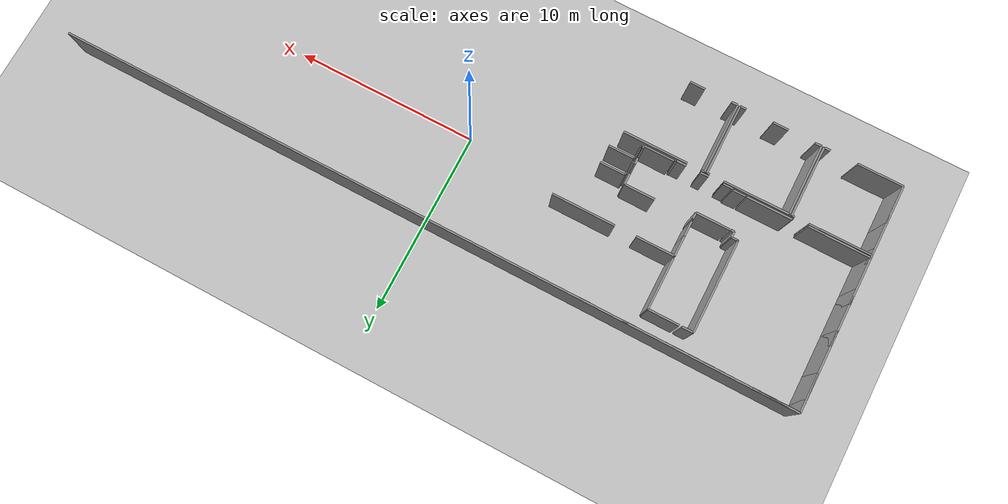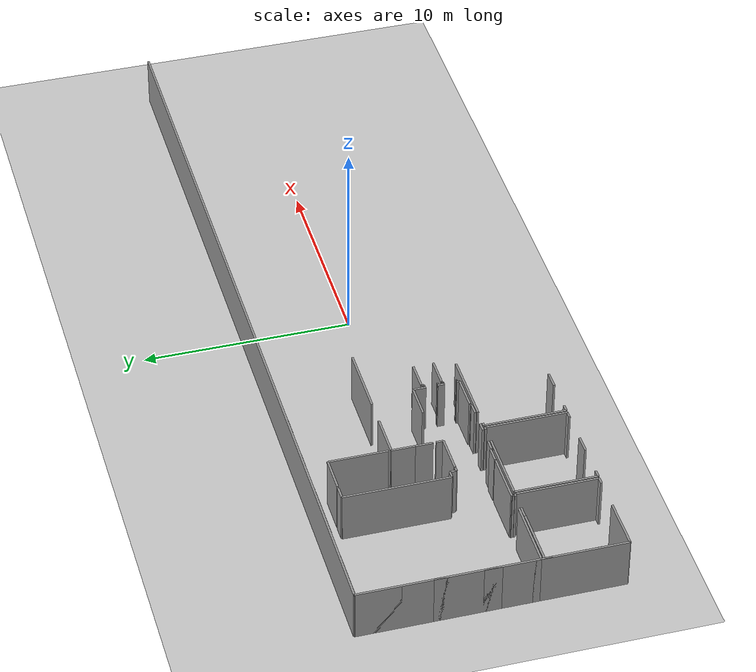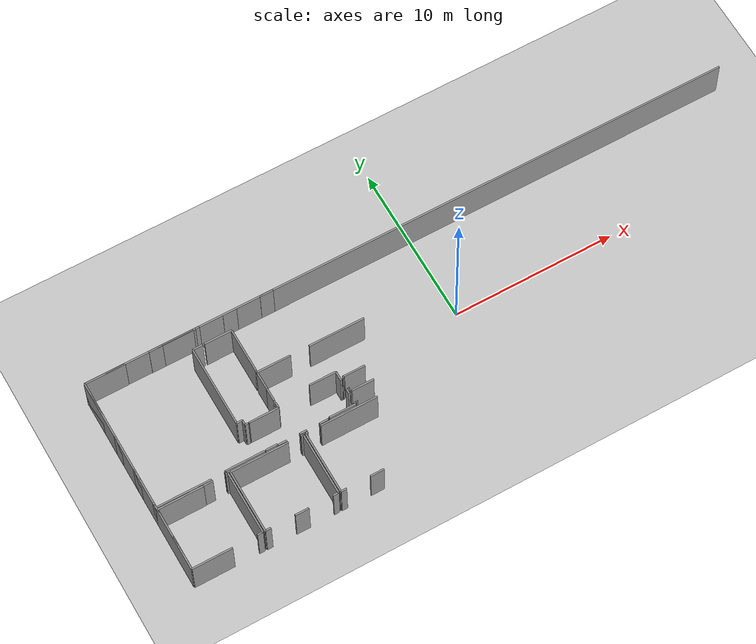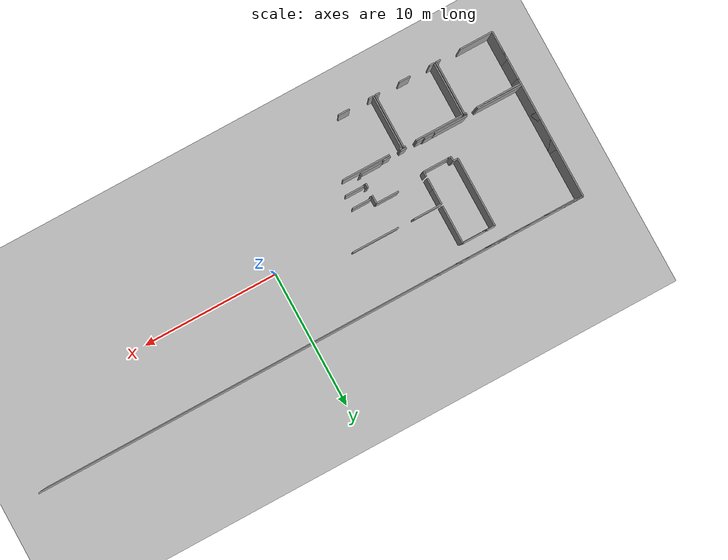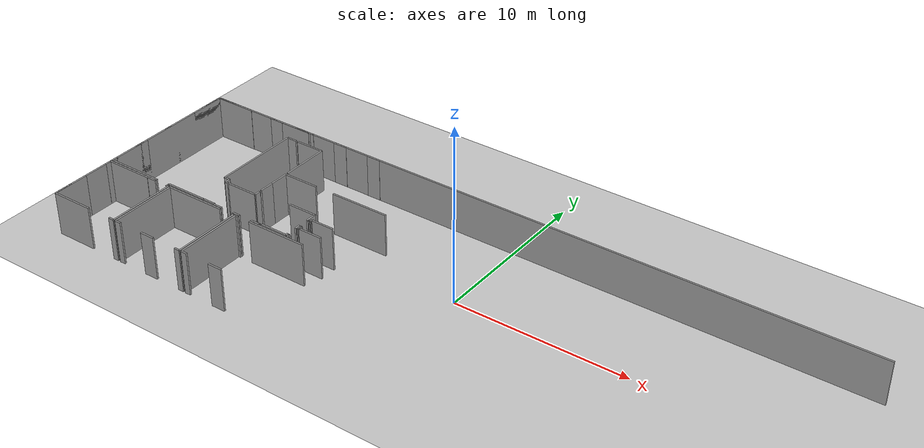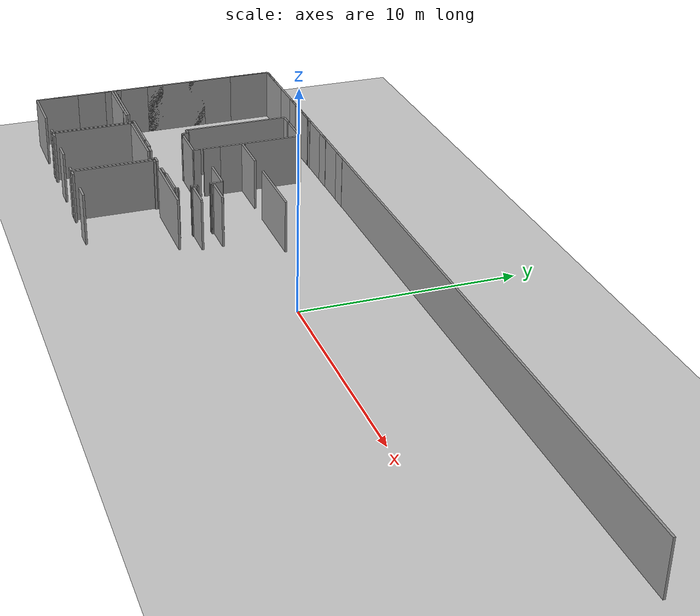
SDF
<sdf version="1.6">
 <world name="default">
  <model name="ground_plane">
   <static>1</static>
   <link name="link">
    <collision name="collision">
     <geometry><plane><normal>0 0 1</normal><size>100 100</size></plane></geometry>
     <surface><friction><ode><mu>100</mu><mu2>50</mu2></ode></friction></surface>
    </collision>
    <visual name="visual">
     <cast_shadows>0</cast_shadows>
     <geometry><plane><normal>0 0 1</normal><size>100 100</size></plane></geometry>
     <material>
      <script><uri>file://media/materials/scripts/gazebo.material</uri><name>Gazebo/Grey</name></script>
     </material>
    </visual>
   </link>
  </model>
  <model name="0510025537_Layout1_PLAN2">
   <static>1</static>
   <link name="Wall_0">
    <collision name="Wall_0_Collision">
     <geometry><box><size>2.0953167694 0.1 2.5</size></box></geometry>
     <pose>1.0476583847 0 1.25 0 0 0</pose>
    </collision>
    <visual name="Wall_0_Visual">
     <pose>1.0476583847 0 1.25 0 0 0</pose>
     <geometry><box><size>2.0953167694 0.1 2.5</size></box></geometry>
     <material>
      <script><uri>file://media/materials/scripts/gazebo.material</uri><name>Gazebo/Grey</name></script>
      <ambient>1 1 1 1</ambient>
     </material>
    </visual>
    <pose>0.00184279087501 -12.3735464193 0 0 0 1.57079632679</pose>
   </link>
   <link name="Wall_1">
    <collision name="Wall_1_Collision">
     <geometry><box><size>0.37783567389 0.1 2.5</size></box></geometry>
     <pose>0.188917836945 0 1.25 0 0 0</pose>
    </collision>
    <visual name="Wall_1_Visual">
     <pose>0.188917836945 0 1.25 0 0 0</pose>
     <geometry><box><size>0.37783567389 0.1 2.5</size></box></geometry>
     <material>
      <script><uri>file://media/materials/scripts/gazebo.material</uri><name>Gazebo/Grey</name></script>
      <ambient>1 1 1 1</ambient>
     </material>
    </visual>
    <pose>0.00184279087501 -8.86036093283 0 0 0 1.57079632679</pose>
   </link>
   <link name="Wall_2">
    <collision name="Wall_2_Collision">
     <geometry><box><size>2.75509944716 0.1 2.5</size></box></geometry>
     <pose>1.37754972358 0 1.25 0 0 0</pose>
    </collision>
    <visual name="Wall_2_Visual">
     <pose>1.37754972358 0 1.25 0 0 0</pose>
     <geometry><box><size>2.75509944716 0.1 2.5</size></box></geometry>
     <material>
      <script><uri>file://media/materials/scripts/gazebo.material</uri><name>Gazebo/Grey</name></script>
      <ambient>1 1 1 1</ambient>
     </material>
    </visual>
    <pose>0.00184279087501 -8.48252525894 0 0 0 0.0</pose>
   </link>
   <link name="Wall_3">
    <collision name="Wall_3_Collision">
     <geometry><box><size>0.0133443477156 0.1 2.5</size></box></geometry>
     <pose>0.00667217385779 0 1.25 0 0 0</pose>
    </collision>
    <visual name="Wall_3_Visual">
     <pose>0.00667217385779 0 1.25 0 0 0</pose>
     <geometry><box><size>0.0133443477156 0.1 2.5</size></box></geometry>
     <material>
      <script><uri>file://media/materials/scripts/gazebo.material</uri><name>Gazebo/Grey</name></script>
      <ambient>1 1 1 1</ambient>
     </material>
    </visual>
    <pose>2.75694223804 -8.48252525894 0 0 0 1.57079632679</pose>
   </link>
   <link name="Wall_4">
    <collision name="Wall_4_Collision">
     <geometry><box><size>0.562368939442 0.1 2.5</size></box></geometry>
     <pose>0.281184469721 0 1.25 0 0 0</pose>
    </collision>
    <visual name="Wall_4_Visual">
     <pose>0.281184469721 0 1.25 0 0 0</pose>
     <geometry><box><size>0.562368939442 0.1 2.5</size></box></geometry>
     <material>
      <script><uri>file://media/materials/scripts/gazebo.material</uri><name>Gazebo/Grey</name></script>
      <ambient>1 1 1 1</ambient>
     </material>
    </visual>
    <pose>2.75694223804 -8.46918091123 0 0 0 0.0</pose>
   </link>
   <link name="Wall_5">
    <collision name="Wall_5_Collision">
     <geometry><box><size>0.150791129186 0.1 2.5</size></box></geometry>
     <pose>0.075395564593 0 1.25 0 0 0</pose>
    </collision>
    <visual name="Wall_5_Visual">
     <pose>0.075395564593 0 1.25 0 0 0</pose>
     <geometry><box><size>0.150791129186 0.1 2.5</size></box></geometry>
     <material>
      <script><uri>file://media/materials/scripts/gazebo.material</uri><name>Gazebo/Grey</name></script>
      <ambient>1 1 1 1</ambient>
     </material>
    </visual>
    <pose>4.08082862045 -8.46918091123 0 0 0 0.0</pose>
   </link>
   <link name="Wall_6">
    <collision name="Wall_6_Collision">
     <geometry><box><size>3.9007434708 0.1 2.5</size></box></geometry>
     <pose>1.9503717354 0 1.25 0 0 0</pose>
    </collision>
    <visual name="Wall_6_Visual">
     <pose>1.9503717354 0 1.25 0 0 0</pose>
     <geometry><box><size>3.9007434708 0.1 2.5</size></box></geometry>
     <material>
      <script><uri>file://media/materials/scripts/gazebo.material</uri><name>Gazebo/Grey</name></script>
      <ambient>1 1 1 1</ambient>
     </material>
    </visual>
    <pose>4.23161974963 -8.46918091123 0 0 0 -1.57079632679</pose>
   </link>
   <link name="Wall_7">
    <collision name="Wall_7_Collision">
     <geometry><box><size>0.335324394739 0.1 2.5</size></box></geometry>
     <pose>0.167662197369 0 1.25 0 0 0</pose>
    </collision>
    <visual name="Wall_7_Visual">
     <pose>0.167662197369 0 1.25 0 0 0</pose>
     <geometry><box><size>0.335324394739 0.1 2.5</size></box></geometry>
     <material>
      <script><uri>file://media/materials/scripts/gazebo.material</uri><name>Gazebo/Grey</name></script>
      <ambient>1 1 1 1</ambient>
     </material>
    </visual>
    <pose>4.23161974963 -12.369924382 0 0 0 3.14159265359</pose>
   </link>
   <link name="Wall_8">
    <collision name="Wall_8_Collision">
     <geometry><box><size>2.42187472982 0.1 2.5</size></box></geometry>
     <pose>1.21093736491 0 1.25 0 0 0</pose>
    </collision>
    <visual name="Wall_8_Visual">
     <pose>1.21093736491 0 1.25 0 0 0</pose>
     <geometry><box><size>2.42187472982 0.1 2.5</size></box></geometry>
     <material>
      <script><uri>file://media/materials/scripts/gazebo.material</uri><name>Gazebo/Grey</name></script>
      <ambient>1 1 1 1</ambient>
     </material>
    </visual>
    <pose>2.42371481223 -12.369924382 0 0 0 -3.14009710201</pose>
   </link>
   <link name="Wall_9">
    <collision name="Wall_9_Collision">
     <geometry><box><size>0.332337802631 0.1 2.5</size></box></geometry>
     <pose>0.166168901315 0 1.25 0 0 0</pose>
    </collision>
    <visual name="Wall_9_Visual">
     <pose>0.166168901315 0 1.25 0 0 0</pose>
     <geometry><box><size>0.332337802631 0.1 2.5</size></box></geometry>
     <material>
      <script><uri>file://media/materials/scripts/gazebo.material</uri><name>Gazebo/Grey</name></script>
      <ambient>1 1 1 1</ambient>
     </material>
    </visual>
    <pose>0.0 -8.34723899091 0 0 0 1.57079632679</pose>
   </link>
   <link name="Wall_10">
    <collision name="Wall_10_Collision">
     <geometry><box><size>0.832496663913 0.1 2.5</size></box></geometry>
     <pose>0.416248331957 0 1.25 0 0 0</pose>
    </collision>
    <visual name="Wall_10_Visual">
     <pose>0.416248331957 0 1.25 0 0 0</pose>
     <geometry><box><size>0.832496663913 0.1 2.5</size></box></geometry>
     <material>
      <script><uri>file://media/materials/scripts/gazebo.material</uri><name>Gazebo/Grey</name></script>
      <ambient>1 1 1 1</ambient>
     </material>
    </visual>
    <pose>0.0 -6.60815276101 0 0 0 1.57079632679</pose>
   </link>
   <link name="Wall_11">
    <collision name="Wall_11_Collision">
     <geometry><box><size>0.82658702421 0.1 2.5</size></box></geometry>
     <pose>0.413293512105 0 1.25 0 0 0</pose>
    </collision>
    <visual name="Wall_11_Visual">
     <pose>0.413293512105 0 1.25 0 0 0</pose>
     <geometry><box><size>0.82658702421 0.1 2.5</size></box></geometry>
     <material>
      <script><uri>file://media/materials/scripts/gazebo.material</uri><name>Gazebo/Grey</name></script>
      <ambient>1 1 1 1</ambient>
     </material>
    </visual>
    <pose>0.0 -4.35499142149 0 0 0 1.57079632679</pose>
   </link>
   <link name="Wall_12">
    <collision name="Wall_12_Collision">
     <geometry><box><size>2.08584863697 0.1 2.5</size></box></geometry>
     <pose>1.04292431849 0 1.25 0 0 0</pose>
    </collision>
    <visual name="Wall_12_Visual">
     <pose>1.04292431849 0 1.25 0 0 0</pose>
     <geometry><box><size>2.08584863697 0.1 2.5</size></box></geometry>
     <material>
      <script><uri>file://media/materials/scripts/gazebo.material</uri><name>Gazebo/Grey</name></script>
      <ambient>1 1 1 1</ambient>
     </material>
    </visual>
    <pose>0.0 -2.09510071805 0 0 0 1.57079632679</pose>
   </link>
   <link name="Wall_13">
    <collision name="Wall_13_Collision">
     <geometry><box><size>2.44697210396 0.1 2.5</size></box></geometry>
     <pose>1.22348605198 0 1.25 0 0 0</pose>
    </collision>
    <visual name="Wall_13_Visual">
     <pose>1.22348605198 0 1.25 0 0 0</pose>
     <geometry><box><size>2.44697210396 0.1 2.5</size></box></geometry>
     <material>
      <script><uri>file://media/materials/scripts/gazebo.material</uri><name>Gazebo/Grey</name></script>
      <ambient>1 1 1 1</ambient>
     </material>
    </visual>
    <pose>0.0 -0.0092520810828 0 0 0 0.0</pose>
   </link>
   <link name="Wall_14">
    <collision name="Wall_14_Collision">
     <geometry><box><size>0.828938171189 0.1 2.5</size></box></geometry>
     <pose>0.414469085594 0 1.25 0 0 0</pose>
    </collision>
    <visual name="Wall_14_Visual">
     <pose>0.414469085594 0 1.25 0 0 0</pose>
     <geometry><box><size>0.828938171189 0.1 2.5</size></box></geometry>
     <material>
      <script><uri>file://media/materials/scripts/gazebo.material</uri><name>Gazebo/Grey</name></script>
      <ambient>1 1 1 1</ambient>
     </material>
    </visual>
    <pose>3.88987735909 -0.0092520810828 0 0 0 0.0</pose>
   </link>
   <link name="Wall_15">
    <collision name="Wall_15_Collision">
     <geometry><box><size>1.89909131347 0.1 2.5</size></box></geometry>
     <pose>0.949545656733 0 1.25 0 0 0</pose>
    </collision>
    <visual name="Wall_15_Visual">
     <pose>0.949545656733 0 1.25 0 0 0</pose>
     <geometry><box><size>1.89909131347 0.1 2.5</size></box></geometry>
     <material>
      <script><uri>file://media/materials/scripts/gazebo.material</uri><name>Gazebo/Grey</name></script>
      <ambient>1 1 1 1</ambient>
     </material>
    </visual>
    <pose>4.71881553028 -0.0092520810828 0 0 0 0.0</pose>
   </link>
   <link name="Wall_16">
    <collision name="Wall_16_Collision">
     <geometry><box><size>0.601957170998 0.1 2.5</size></box></geometry>
     <pose>0.300978585499 0 1.25 0 0 0</pose>
    </collision>
    <visual name="Wall_16_Visual">
     <pose>0.300978585499 0 1.25 0 0 0</pose>
     <geometry><box><size>0.601957170998 0.1 2.5</size></box></geometry>
     <material>
      <script><uri>file://media/materials/scripts/gazebo.material</uri><name>Gazebo/Grey</name></script>
      <ambient>1 1 1 1</ambient>
     </material>
    </visual>
    <pose>6.61790684374 -1.06967655843 0 0 0 3.14159265359</pose>
   </link>
   <link name="Wall_17">
    <collision name="Wall_17_Collision">
     <geometry><box><size>5.04740420665 0.1 2.5</size></box></geometry>
     <pose>2.52370210332 0 1.25 0 0 0</pose>
    </collision>
    <visual name="Wall_17_Visual">
     <pose>2.52370210332 0 1.25 0 0 0</pose>
     <geometry><box><size>5.04740420665 0.1 2.5</size></box></geometry>
     <material>
      <script><uri>file://media/materials/scripts/gazebo.material</uri><name>Gazebo/Grey</name></script>
      <ambient>1 1 1 1</ambient>
     </material>
    </visual>
    <pose>6.01594967275 -1.06967655843 0 0 0 -1.57079632679</pose>
   </link>
   <link name="Wall_18">
    <collision name="Wall_18_Collision">
     <geometry><box><size>0.345872783885 0.1 2.5</size></box></geometry>
     <pose>0.172936391943 0 1.25 0 0 0</pose>
    </collision>
    <visual name="Wall_18_Visual">
     <pose>0.172936391943 0 1.25 0 0 0</pose>
     <geometry><box><size>0.345872783885 0.1 2.5</size></box></geometry>
     <material>
      <script><uri>file://media/materials/scripts/gazebo.material</uri><name>Gazebo/Grey</name></script>
      <ambient>1 1 1 1</ambient>
     </material>
    </visual>
    <pose>6.01594967275 -6.11708076508 0 0 0 0.0</pose>
   </link>
   <link name="Wall_19">
    <collision name="Wall_19_Collision">
     <geometry><box><size>0.308826332846 0.1 2.5</size></box></geometry>
     <pose>0.154413166423 0 1.25 0 0 0</pose>
    </collision>
    <visual name="Wall_19_Visual">
     <pose>0.154413166423 0 1.25 0 0 0</pose>
     <geometry><box><size>0.308826332846 0.1 2.5</size></box></geometry>
     <material>
      <script><uri>file://media/materials/scripts/gazebo.material</uri><name>Gazebo/Grey</name></script>
      <ambient>1 1 1 1</ambient>
     </material>
    </visual>
    <pose>6.36182245663 -6.11708076508 0 0 0 -1.57079632679</pose>
   </link>
   <link name="Wall_20">
    <collision name="Wall_20_Collision">
     <geometry><box><size>0.178051725234 0.1 2.5</size></box></geometry>
     <pose>0.0890258626168 0 1.25 0 0 0</pose>
    </collision>
    <visual name="Wall_20_Visual">
     <pose>0.0890258626168 0 1.25 0 0 0</pose>
     <geometry><box><size>0.178051725234 0.1 2.5</size></box></geometry>
     <material>
      <script><uri>file://media/materials/scripts/gazebo.material</uri><name>Gazebo/Grey</name></script>
      <ambient>1 1 1 1</ambient>
     </material>
    </visual>
    <pose>6.36182245663 -6.42590709792 0 0 0 0.0</pose>
   </link>
   <link name="Wall_21">
    <collision name="Wall_21_Collision">
     <geometry><box><size>2.39778865095 0.1 2.5</size></box></geometry>
     <pose>1.19889432547 0 1.25 0 0 0</pose>
    </collision>
    <visual name="Wall_21_Visual">
     <pose>1.19889432547 0 1.25 0 0 0</pose>
     <geometry><box><size>2.39778865095 0.1 2.5</size></box></geometry>
     <material>
      <script><uri>file://media/materials/scripts/gazebo.material</uri><name>Gazebo/Grey</name></script>
      <ambient>1 1 1 1</ambient>
     </material>
    </visual>
    <pose>6.53987418186 -8.30237656478 0 0 0 3.14159265359</pose>
   </link>
   <link name="Wall_22">
    <collision name="Wall_22_Collision">
     <geometry><box><size>0.0597318421554 0.1 2.5</size></box></geometry>
     <pose>0.0298659210777 0 1.25 0 0 0</pose>
    </collision>
    <visual name="Wall_22_Visual">
     <pose>0.0298659210777 0 1.25 0 0 0</pose>
     <geometry><box><size>0.0597318421554 0.1 2.5</size></box></geometry>
     <material>
      <script><uri>file://media/materials/scripts/gazebo.material</uri><name>Gazebo/Grey</name></script>
      <ambient>1 1 1 1</ambient>
     </material>
    </visual>
    <pose>4.14208553091 -8.30237656478 0 0 0 -1.57079632679</pose>
   </link>
   <link name="Wall_23">
    <collision name="Wall_23_Collision">
     <geometry><box><size>0.0581432293321 0.1 2.5</size></box></geometry>
     <pose>0.0290716146661 0 1.25 0 0 0</pose>
    </collision>
    <visual name="Wall_23_Visual">
     <pose>0.0290716146661 0 1.25 0 0 0</pose>
     <geometry><box><size>0.0581432293321 0.1 2.5</size></box></geometry>
     <material>
      <script><uri>file://media/materials/scripts/gazebo.material</uri><name>Gazebo/Grey</name></script>
      <ambient>1 1 1 1</ambient>
     </material>
    </visual>
    <pose>4.14208553091 -8.36210840694 0 0 0 3.14159265359</pose>
   </link>
   <link name="Wall_24">
    <collision name="Wall_24_Collision">
     <geometry><box><size>3.29913753122 0.1 2.5</size></box></geometry>
     <pose>1.64956876561 0 1.25 0 0 0</pose>
    </collision>
    <visual name="Wall_24_Visual">
     <pose>1.64956876561 0 1.25 0 0 0</pose>
     <geometry><box><size>3.29913753122 0.1 2.5</size></box></geometry>
     <material>
      <script><uri>file://media/materials/scripts/gazebo.material</uri><name>Gazebo/Grey</name></script>
      <ambient>1 1 1 1</ambient>
     </material>
    </visual>
    <pose>3.29910402237 -8.36210840694 0 0 0 3.13708557675</pose>
   </link>
   <link name="Wall_25">
    <collision name="Wall_25_Collision">
     <geometry><box><size>3.89686725551 0.1 2.5</size></box></geometry>
     <pose>1.94843362776 0 1.25 0 0 0</pose>
    </collision>
    <visual name="Wall_25_Visual">
     <pose>1.94843362776 0 1.25 0 0 0</pose>
     <geometry><box><size>3.89686725551 0.1 2.5</size></box></geometry>
     <material>
      <script><uri>file://media/materials/scripts/gazebo.material</uri><name>Gazebo/Grey</name></script>
      <ambient>1 1 1 1</ambient>
     </material>
    </visual>
    <pose>4.36671538413 -12.3752621211 0 0 0 1.57079632679</pose>
   </link>
   <link name="Wall_26">
    <collision name="Wall_26_Collision">
     <geometry><box><size>3.50651331258 0.1 2.5</size></box></geometry>
     <pose>1.75325665629 0 1.25 0 0 0</pose>
    </collision>
    <visual name="Wall_26_Visual">
     <pose>1.75325665629 0 1.25 0 0 0</pose>
     <geometry><box><size>3.50651331258 0.1 2.5</size></box></geometry>
     <material>
      <script><uri>file://media/materials/scripts/gazebo.material</uri><name>Gazebo/Grey</name></script>
      <ambient>1 1 1 1</ambient>
     </material>
    </visual>
    <pose>4.36671538413 -8.4783948656 0 0 0 0.0</pose>
   </link>
   <link name="Wall_27">
    <collision name="Wall_27_Collision">
     <geometry><box><size>0.146152379742 0.1 2.5</size></box></geometry>
     <pose>0.073076189871 0 1.25 0 0 0</pose>
    </collision>
    <visual name="Wall_27_Visual">
     <pose>0.073076189871 0 1.25 0 0 0</pose>
     <geometry><box><size>0.146152379742 0.1 2.5</size></box></geometry>
     <material>
      <script><uri>file://media/materials/scripts/gazebo.material</uri><name>Gazebo/Grey</name></script>
      <ambient>1 1 1 1</ambient>
     </material>
    </visual>
    <pose>8.64459553918 -8.4783948656 0 0 0 0.0</pose>
   </link>
   <link name="Wall_28">
    <collision name="Wall_28_Collision">
     <geometry><box><size>3.89413484146 0.1 2.5</size></box></geometry>
     <pose>1.94706742073 0 1.25 0 0 0</pose>
    </collision>
    <visual name="Wall_28_Visual">
     <pose>1.94706742073 0 1.25 0 0 0</pose>
     <geometry><box><size>3.89413484146 0.1 2.5</size></box></geometry>
     <material>
      <script><uri>file://media/materials/scripts/gazebo.material</uri><name>Gazebo/Grey</name></script>
      <ambient>1 1 1 1</ambient>
     </material>
    </visual>
    <pose>8.79074791892 -8.4783948656 0 0 0 -1.57079632679</pose>
   </link>
   <link name="Wall_29">
    <collision name="Wall_29_Collision">
     <geometry><box><size>0.338755798437 0.1 2.5</size></box></geometry>
     <pose>0.169377899218 0 1.25 0 0 0</pose>
    </collision>
    <visual name="Wall_29_Visual">
     <pose>0.169377899218 0 1.25 0 0 0</pose>
     <geometry><box><size>0.338755798437 0.1 2.5</size></box></geometry>
     <material>
      <script><uri>file://media/materials/scripts/gazebo.material</uri><name>Gazebo/Grey</name></script>
      <ambient>1 1 1 1</ambient>
     </material>
    </visual>
    <pose>8.79074791892 -12.3725297071 0 0 0 3.14159265359</pose>
   </link>
   <link name="Wall_30">
    <collision name="Wall_30_Collision">
     <geometry><box><size>0.831289318167 0.1 2.5</size></box></geometry>
     <pose>0.415644659084 0 1.25 0 0 0</pose>
    </collision>
    <visual name="Wall_30_Visual">
     <pose>0.415644659084 0 1.25 0 0 0</pose>
     <geometry><box><size>0.831289318167 0.1 2.5</size></box></geometry>
     <material>
      <script><uri>file://media/materials/scripts/gazebo.material</uri><name>Gazebo/Grey</name></script>
      <ambient>1 1 1 1</ambient>
     </material>
    </visual>
    <pose>6.99059541209 -12.3725297071 0 0 0 3.14159265359</pose>
   </link>
   <link name="Wall_31">
    <collision name="Wall_31_Collision">
     <geometry><box><size>0.347853395608 0.1 2.5</size></box></geometry>
     <pose>0.173926697804 0 1.25 0 0 0</pose>
    </collision>
    <visual name="Wall_31_Visual">
     <pose>0.173926697804 0 1.25 0 0 0</pose>
     <geometry><box><size>0.347853395608 0.1 2.5</size></box></geometry>
     <material>
      <script><uri>file://media/materials/scripts/gazebo.material</uri><name>Gazebo/Grey</name></script>
      <ambient>1 1 1 1</ambient>
     </material>
    </visual>
    <pose>4.71455804791 -12.3725297071 0 0 0 -3.13373749912</pose>
   </link>
   <link name="Wall_32">
    <collision name="Wall_32_Collision">
     <geometry><box><size>3.89813814577 0.1 2.5</size></box></geometry>
     <pose>1.94906907289 0 1.25 0 0 0</pose>
    </collision>
    <visual name="Wall_32_Visual">
     <pose>1.94906907289 0 1.25 0 0 0</pose>
     <geometry><box><size>3.89813814577 0.1 2.5</size></box></geometry>
     <material>
      <script><uri>file://media/materials/scripts/gazebo.material</uri><name>Gazebo/Grey</name></script>
      <ambient>1 1 1 1</ambient>
     </material>
    </visual>
    <pose>8.92323822838 -12.3739276863 0 0 0 1.57079632679</pose>
   </link>
   <link name="Wall_33">
    <collision name="Wall_33_Collision">
     <geometry><box><size>0.159814450022 0.1 2.5</size></box></geometry>
     <pose>0.0799072250111 0 1.25 0 0 0</pose>
    </collision>
    <visual name="Wall_33_Visual">
     <pose>0.0799072250111 0 1.25 0 0 0</pose>
     <geometry><box><size>0.159814450022 0.1 2.5</size></box></geometry>
     <material>
      <script><uri>file://media/materials/scripts/gazebo.material</uri><name>Gazebo/Grey</name></script>
      <ambient>1 1 1 1</ambient>
     </material>
    </visual>
    <pose>8.92323822838 -8.47578954057 0 0 0 0.0</pose>
   </link>
   <link name="Wall_34">
    <collision name="Wall_34_Collision">
     <geometry><box><size>3.48802185931 0.1 2.5</size></box></geometry>
     <pose>1.74401092966 0 1.25 0 0 0</pose>
    </collision>
    <visual name="Wall_34_Visual">
     <pose>1.74401092966 0 1.25 0 0 0</pose>
     <geometry><box><size>3.48802185931 0.1 2.5</size></box></geometry>
     <material>
      <script><uri>file://media/materials/scripts/gazebo.material</uri><name>Gazebo/Grey</name></script>
      <ambient>1 1 1 1</ambient>
     </material>
    </visual>
    <pose>9.85175065133 -8.47578954057 0 0 0 0.0</pose>
   </link>
   <link name="Wall_37">
    <collision name="Wall_37_Collision">
     <geometry><box><size>0.827730825443 0.1 2.5</size></box></geometry>
     <pose>0.413865412722 0 1.25 0 0 0</pose>
    </collision>
    <visual name="Wall_37_Visual">
     <pose>0.413865412722 0 1.25 0 0 0</pose>
     <geometry><box><size>0.827730825443 0.1 2.5</size></box></geometry>
     <material>
      <script><uri>file://media/materials/scripts/gazebo.material</uri><name>Gazebo/Grey</name></script>
      <ambient>1 1 1 1</ambient>
     </material>
    </visual>
    <pose>11.5461015441 -12.3732922412 0 0 0 3.14159265359</pose>
   </link>
   <link name="Wall_38">
    <collision name="Wall_38_Collision">
     <geometry><box><size>0.341806525729 0.1 2.5</size></box></geometry>
     <pose>0.170903262865 0 1.25 0 0 0</pose>
    </collision>
    <visual name="Wall_38_Visual">
     <pose>0.170903262865 0 1.25 0 0 0</pose>
     <geometry><box><size>0.341806525729 0.1 2.5</size></box></geometry>
     <material>
      <script><uri>file://media/materials/scripts/gazebo.material</uri><name>Gazebo/Grey</name></script>
      <ambient>1 1 1 1</ambient>
     </material>
    </visual>
    <pose>9.26504416344 -12.3732922412 0 0 0 -3.13973357412</pose>
   </link>
   <link name="Wall_39">
    <collision name="Wall_39_Collision">
     <geometry><box><size>1.80618923556 0.1 2.5</size></box></geometry>
     <pose>0.90309461778 0 1.25 0 0 0</pose>
    </collision>
    <visual name="Wall_39_Visual">
     <pose>0.90309461778 0 1.25 0 0 0</pose>
     <geometry><box><size>1.80618923556 0.1 2.5</size></box></geometry>
     <material>
      <script><uri>file://media/materials/scripts/gazebo.material</uri><name>Gazebo/Grey</name></script>
      <ambient>1 1 1 1</ambient>
     </material>
    </visual>
    <pose>6.60214780454 -6.42317468387 0 0 0 0.0</pose>
   </link>
   <link name="Wall_40">
    <collision name="Wall_40_Collision">
     <geometry><box><size>0.347207218657 0.1 2.5</size></box></geometry>
     <pose>0.173603609328 0 1.25 0 0 0</pose>
    </collision>
    <visual name="Wall_40_Visual">
     <pose>0.173603609328 0 1.25 0 0 0</pose>
     <geometry><box><size>0.347207218657 0.1 2.5</size></box></geometry>
     <material>
      <script><uri>file://media/materials/scripts/gazebo.material</uri><name>Gazebo/Grey</name></script>
      <ambient>1 1 1 1</ambient>
     </material>
    </visual>
    <pose>8.4083370401 -6.42317468387 0 0 0 1.57079632679</pose>
   </link>
   <link name="Wall_41">
    <collision name="Wall_41_Collision">
     <geometry><box><size>0.0605579208235 0.1 2.5</size></box></geometry>
     <pose>0.0302789604118 0 1.25 0 0 0</pose>
    </collision>
    <visual name="Wall_41_Visual">
     <pose>0.0302789604118 0 1.25 0 0 0</pose>
     <geometry><box><size>0.0605579208235 0.1 2.5</size></box></geometry>
     <material>
      <script><uri>file://media/materials/scripts/gazebo.material</uri><name>Gazebo/Grey</name></script>
      <ambient>1 1 1 1</ambient>
     </material>
    </visual>
    <pose>10.3918154667 -8.28934993963 0 0 0 -1.57079632679</pose>
   </link>
   <link name="Wall_42">
    <collision name="Wall_42_Collision">
     <geometry><box><size>0.542543051408 0.1 2.5</size></box></geometry>
     <pose>0.271271525704 0 1.25 0 0 0</pose>
    </collision>
    <visual name="Wall_42_Visual">
     <pose>0.271271525704 0 1.25 0 0 0</pose>
     <geometry><box><size>0.542543051408 0.1 2.5</size></box></geometry>
     <material>
      <script><uri>file://media/materials/scripts/gazebo.material</uri><name>Gazebo/Grey</name></script>
      <ambient>1 1 1 1</ambient>
     </material>
    </visual>
    <pose>10.3918154667 -8.34990786046 0 0 0 3.14159265359</pose>
   </link>
   <link name="Wall_43">
    <collision name="Wall_43_Collision">
     <geometry><box><size>0.438711317278 0.1 2.5</size></box></geometry>
     <pose>0.219355658639 0 1.25 0 0 0</pose>
    </collision>
    <visual name="Wall_43_Visual">
     <pose>0.219355658639 0 1.25 0 0 0</pose>
     <geometry><box><size>0.438711317278 0.1 2.5</size></box></geometry>
     <material>
      <script><uri>file://media/materials/scripts/gazebo.material</uri><name>Gazebo/Grey</name></script>
      <ambient>1 1 1 1</ambient>
     </material>
    </visual>
    <pose>9.0805744424 -8.34990786046 0 0 0 3.14159265359</pose>
   </link>
   <link name="Wall_44">
    <collision name="Wall_44_Collision">
     <geometry><box><size>0.544258753257 0.1 2.5</size></box></geometry>
     <pose>0.272129376628 0 1.25 0 0 0</pose>
    </collision>
    <visual name="Wall_44_Visual">
     <pose>0.272129376628 0 1.25 0 0 0</pose>
     <geometry><box><size>0.544258753257 0.1 2.5</size></box></geometry>
     <material>
      <script><uri>file://media/materials/scripts/gazebo.material</uri><name>Gazebo/Grey</name></script>
      <ambient>1 1 1 1</ambient>
     </material>
    </visual>
    <pose>7.86649297833 -8.34990786046 0 0 0 3.14159265359</pose>
   </link>
   <link name="Wall_45">
    <collision name="Wall_45_Collision">
     <geometry><box><size>0.056427527483 0.1 2.5</size></box></geometry>
     <pose>0.0282137637415 0 1.25 0 0 0</pose>
    </collision>
    <visual name="Wall_45_Visual">
     <pose>0.0282137637415 0 1.25 0 0 0</pose>
     <geometry><box><size>0.056427527483 0.1 2.5</size></box></geometry>
     <material>
      <script><uri>file://media/materials/scripts/gazebo.material</uri><name>Gazebo/Grey</name></script>
      <ambient>1 1 1 1</ambient>
     </material>
    </visual>
    <pose>7.32223422507 -8.34990786046 0 0 0 1.57079632679</pose>
   </link>
   <link name="Wall_46">
    <collision name="Wall_46_Collision">
     <geometry><box><size>0.720094296268 0.1 2.5</size></box></geometry>
     <pose>0.360047148134 0 1.25 0 0 0</pose>
    </collision>
    <visual name="Wall_46_Visual">
     <pose>0.360047148134 0 1.25 0 0 0</pose>
     <geometry><box><size>0.720094296268 0.1 2.5</size></box></geometry>
     <material>
      <script><uri>file://media/materials/scripts/gazebo.material</uri><name>Gazebo/Grey</name></script>
      <ambient>1 1 1 1</ambient>
     </material>
    </visual>
    <pose>7.32223422507 -8.29348033297 0 0 0 -3.13691566687</pose>
   </link>
   <link name="Wall_47">
    <collision name="Wall_47_Collision">
     <geometry><box><size>1.36131410053 0.1 2.5</size></box></geometry>
     <pose>0.680657050264 0 1.25 0 0 0</pose>
    </collision>
    <visual name="Wall_47_Visual">
     <pose>0.680657050264 0 1.25 0 0 0</pose>
     <geometry><box><size>1.36131410053 0.1 2.5</size></box></geometry>
     <material>
      <script><uri>file://media/materials/scripts/gazebo.material</uri><name>Gazebo/Grey</name></script>
      <ambient>1 1 1 1</ambient>
     </material>
    </visual>
    <pose>12.3027896041 -6.52281248014 0 0 0 0.0</pose>
   </link>
   <link name="Wall_52">
    <collision name="Wall_52_Collision">
     <geometry><box><size>0.0592870305649 0.1 2.5</size></box></geometry>
     <pose>0.0296435152825 0 1.25 0 0 0</pose>
    </collision>
    <visual name="Wall_52_Visual">
     <pose>0.0296435152825 0 1.25 0 0 0</pose>
     <geometry><box><size>0.0592870305649 0.1 2.5</size></box></geometry>
     <material>
      <script><uri>file://media/materials/scripts/gazebo.material</uri><name>Gazebo/Grey</name></script>
      <ambient>1 1 1 1</ambient>
     </material>
    </visual>
    <pose>12.2447734638 -7.30275783186 0 0 0 1.57079632679</pose>
   </link>
   <link name="Wall_53">
    <collision name="Wall_53_Collision">
     <geometry><box><size>0.0461333163881 0.1 2.5</size></box></geometry>
     <pose>0.0230666581941 0 1.25 0 0 0</pose>
    </collision>
    <visual name="Wall_53_Visual">
     <pose>0.0230666581941 0 1.25 0 0 0</pose>
     <geometry><box><size>0.0461333163881 0.1 2.5</size></box></geometry>
     <material>
      <script><uri>file://media/materials/scripts/gazebo.material</uri><name>Gazebo/Grey</name></script>
      <ambient>1 1 1 1</ambient>
     </material>
    </visual>
    <pose>12.2447734638 -6.67735273559 0 0 0 1.57079632679</pose>
   </link>
   <link name="Wall_54">
    <collision name="Wall_54_Collision">
     <geometry><box><size>0.0575713287158 0.1 2.5</size></box></geometry>
     <pose>0.0287856643579 0 1.25 0 0 0</pose>
    </collision>
    <visual name="Wall_54_Visual">
     <pose>0.0287856643579 0 1.25 0 0 0</pose>
     <geometry><box><size>0.0575713287158 0.1 2.5</size></box></geometry>
     <material>
      <script><uri>file://media/materials/scripts/gazebo.material</uri><name>Gazebo/Grey</name></script>
      <ambient>1 1 1 1</ambient>
     </material>
    </visual>
    <pose>12.2447734638 -6.6312194192 0 0 0 0.0</pose>
   </link>
   <link name="Wall_55">
    <collision name="Wall_55_Collision">
     <geometry><box><size>0.108407851625 0.1 2.5</size></box></geometry>
     <pose>0.0542039258124 0 1.25 0 0 0</pose>
    </collision>
    <visual name="Wall_55_Visual">
     <pose>0.0542039258124 0 1.25 0 0 0</pose>
     <geometry><box><size>0.108407851625 0.1 2.5</size></box></geometry>
     <material>
      <script><uri>file://media/materials/scripts/gazebo.material</uri><name>Gazebo/Grey</name></script>
      <ambient>1 1 1 1</ambient>
     </material>
    </visual>
    <pose>12.3023447925 -6.6312194192 0 0 0 1.56669318452</pose>
   </link>
   <link name="Wall_56">
    <collision name="Wall_56_Collision">
     <geometry><box><size>1.37014678782 0.1 2.5</size></box></geometry>
     <pose>0.685073393912 0 1.25 0 0 0</pose>
    </collision>
    <visual name="Wall_56_Visual">
     <pose>0.685073393912 0 1.25 0 0 0</pose>
     <geometry><box><size>1.37014678782 0.1 2.5</size></box></geometry>
     <material>
      <script><uri>file://media/materials/scripts/gazebo.material</uri><name>Gazebo/Grey</name></script>
      <ambient>1 1 1 1</ambient>
     </material>
    </visual>
    <pose>12.3019635254 -7.48246171443 0 0 0 0.0</pose>
   </link>
   <link name="Wall_61">
    <collision name="Wall_61_Collision">
     <geometry><box><size>0.0533773908623 0.1 2.5</size></box></geometry>
     <pose>0.0266886954312 0 1.25 0 0 0</pose>
    </collision>
    <visual name="Wall_61_Visual">
     <pose>0.0266886954312 0 1.25 0 0 0</pose>
     <geometry><box><size>0.0533773908623 0.1 2.5</size></box></geometry>
     <material>
      <script><uri>file://media/materials/scripts/gazebo.material</uri><name>Gazebo/Grey</name></script>
      <ambient>1 1 1 1</ambient>
     </material>
    </visual>
    <pose>12.240706615 -8.19555823855 0 0 0 1.57079632679</pose>
   </link>
   <link name="Wall_62">
    <collision name="Wall_62_Collision">
     <geometry><box><size>0.0484844633666 0.1 2.5</size></box></geometry>
     <pose>0.0242422316833 0 1.25 0 0 0</pose>
    </collision>
    <visual name="Wall_62_Visual">
     <pose>0.0242422316833 0 1.25 0 0 0</pose>
     <geometry><box><size>0.0484844633666 0.1 2.5</size></box></geometry>
     <material>
      <script><uri>file://media/materials/scripts/gazebo.material</uri><name>Gazebo/Grey</name></script>
      <ambient>1 1 1 1</ambient>
     </material>
    </visual>
    <pose>12.240706615 -7.57104276546 0 0 0 1.57079632679</pose>
   </link>
   <link name="Wall_63">
    <collision name="Wall_63_Collision">
     <geometry><box><size>0.0575713287158 0.1 2.5</size></box></geometry>
     <pose>0.0287856643579 0 1.25 0 0 0</pose>
    </collision>
    <visual name="Wall_63_Visual">
     <pose>0.0287856643579 0 1.25 0 0 0</pose>
     <geometry><box><size>0.0575713287158 0.1 2.5</size></box></geometry>
     <material>
      <script><uri>file://media/materials/scripts/gazebo.material</uri><name>Gazebo/Grey</name></script>
      <ambient>1 1 1 1</ambient>
     </material>
    </visual>
    <pose>12.240706615 -7.52255830209 0 0 0 0.0</pose>
   </link>
   <link name="Wall_64">
    <collision name="Wall_64_Collision">
     <geometry><box><size>0.0402656162847 0.1 2.5</size></box></geometry>
     <pose>0.0201328081423 0 1.25 0 0 0</pose>
    </collision>
    <visual name="Wall_64_Visual">
     <pose>0.0201328081423 0 1.25 0 0 0</pose>
     <geometry><box><size>0.0402656162847 0.1 2.5</size></box></geometry>
     <material>
      <script><uri>file://media/materials/scripts/gazebo.material</uri><name>Gazebo/Grey</name></script>
      <ambient>1 1 1 1</ambient>
     </material>
    </visual>
    <pose>12.2982779437 -7.52255830209 0 0 0 1.47913629705</pose>
   </link>
   <link name="Wall_65">
    <collision name="Wall_65_Collision">
     <geometry><box><size>1.64732795323 0.1 2.5</size></box></geometry>
     <pose>0.823663976616 0 1.25 0 0 0</pose>
    </collision>
    <visual name="Wall_65_Visual">
     <pose>0.823663976616 0 1.25 0 0 0</pose>
     <geometry><box><size>1.64732795323 0.1 2.5</size></box></geometry>
     <material>
      <script><uri>file://media/materials/scripts/gazebo.material</uri><name>Gazebo/Grey</name></script>
      <ambient>1 1 1 1</ambient>
     </material>
    </visual>
    <pose>10.4731524433 -6.07666645485 0 0 0 0.0</pose>
   </link>
   <link name="Wall_66">
    <collision name="Wall_66_Collision">
     <geometry><box><size>0.606913643007 0.1 2.5</size></box></geometry>
     <pose>0.303456821503 0 1.25 0 0 0</pose>
    </collision>
    <visual name="Wall_66_Visual">
     <pose>0.303456821503 0 1.25 0 0 0</pose>
     <geometry><box><size>0.606913643007 0.1 2.5</size></box></geometry>
     <material>
      <script><uri>file://media/materials/scripts/gazebo.material</uri><name>Gazebo/Grey</name></script>
      <ambient>1 1 1 1</ambient>
     </material>
    </visual>
    <pose>12.1204803965 -6.07666645485 0 0 0 -1.57079632679</pose>
   </link>
   <link name="Wall_67">
    <collision name="Wall_67_Collision">
     <geometry><box><size>0.332337802631 0.1 2.5</size></box></geometry>
     <pose>0.166168901315 0 1.25 0 0 0</pose>
    </collision>
    <visual name="Wall_67_Visual">
     <pose>0.166168901315 0 1.25 0 0 0</pose>
     <geometry><box><size>0.332337802631 0.1 2.5</size></box></geometry>
     <material>
      <script><uri>file://media/materials/scripts/gazebo.material</uri><name>Gazebo/Grey</name></script>
      <ambient>1 1 1 1</ambient>
     </material>
    </visual>
    <pose>12.1204803965 -7.24493232509 0 0 0 -1.57079632679</pose>
   </link>
   <link name="Wall_68">
    <collision name="Wall_68_Collision">
     <geometry><box><size>0.147486814514 0.1 2.5</size></box></geometry>
     <pose>0.0737434072568 0 1.25 0 0 0</pose>
    </collision>
    <visual name="Wall_68_Visual">
     <pose>0.0737434072568 0 1.25 0 0 0</pose>
     <geometry><box><size>0.147486814514 0.1 2.5</size></box></geometry>
     <material>
      <script><uri>file://media/materials/scripts/gazebo.material</uri><name>Gazebo/Grey</name></script>
      <ambient>1 1 1 1</ambient>
     </material>
    </visual>
    <pose>12.1204803965 -8.14389654953 0 0 0 -1.57079632679</pose>
   </link>
   <link name="Wall_69">
    <collision name="Wall_69_Collision">
     <geometry><box><size>1.62642180848 0.1 2.5</size></box></geometry>
     <pose>0.813210904238 0 1.25 0 0 0</pose>
    </collision>
    <visual name="Wall_69_Visual">
     <pose>0.813210904238 0 1.25 0 0 0</pose>
     <geometry><box><size>1.62642180848 0.1 2.5</size></box></geometry>
     <material>
      <script><uri>file://media/materials/scripts/gazebo.material</uri><name>Gazebo/Grey</name></script>
      <ambient>1 1 1 1</ambient>
     </material>
    </visual>
    <pose>12.1204803965 -8.29138336405 0 0 0 3.14159265359</pose>
   </link>
   <link name="Wall_70">
    <collision name="Wall_70_Collision">
     <geometry><box><size>2.79083052678 0.1 2.5</size></box></geometry>
     <pose>1.39541526339 0 1.25 0 0 0</pose>
    </collision>
    <visual name="Wall_70_Visual">
     <pose>1.39541526339 0 1.25 0 0 0</pose>
     <geometry><box><size>2.79083052678 0.1 2.5</size></box></geometry>
     <material>
      <script><uri>file://media/materials/scripts/gazebo.material</uri><name>Gazebo/Grey</name></script>
      <ambient>1 1 1 1</ambient>
     </material>
    </visual>
    <pose>8.40973501938 -3.86036093283 0 0 0 1.57079632679</pose>
   </link>
   <link name="Wall_71">
    <collision name="Wall_71_Collision">
     <geometry><box><size>1.66969562178 0.1 2.5</size></box></geometry>
     <pose>0.834847810892 0 1.25 0 0 0</pose>
    </collision>
    <visual name="Wall_71_Visual">
     <pose>0.834847810892 0 1.25 0 0 0</pose>
     <geometry><box><size>1.66969562178 0.1 2.5</size></box></geometry>
     <material>
      <script><uri>file://media/materials/scripts/gazebo.material</uri><name>Gazebo/Grey</name></script>
      <ambient>1 1 1 1</ambient>
     </material>
    </visual>
    <pose>8.40973501938 -1.06953040605 0 0 0 3.14159265359</pose>
   </link>
   <link name="Wall_72">
    <collision name="Wall_72_Collision">
     <geometry><box><size>0.234225074665 0.1 2.5</size></box></geometry>
     <pose>0.117112537332 0 1.25 0 0 0</pose>
    </collision>
    <visual name="Wall_72_Visual">
     <pose>0.117112537332 0 1.25 0 0 0</pose>
     <geometry><box><size>0.234225074665 0.1 2.5</size></box></geometry>
     <material>
      <script><uri>file://media/materials/scripts/gazebo.material</uri><name>Gazebo/Grey</name></script>
      <ambient>1 1 1 1</ambient>
     </material>
    </visual>
    <pose>6.7400393976 -0.00805744423969 0 0 0 0.0</pose>
   </link>
   <link name="Wall_73">
    <collision name="Wall_73_Collision">
     <geometry><box><size>0.852894452564 0.1 2.5</size></box></geometry>
     <pose>0.426447226282 0 1.25 0 0 0</pose>
    </collision>
    <visual name="Wall_73_Visual">
     <pose>0.426447226282 0 1.25 0 0 0</pose>
     <geometry><box><size>0.852894452564 0.1 2.5</size></box></geometry>
     <material>
      <script><uri>file://media/materials/scripts/gazebo.material</uri><name>Gazebo/Grey</name></script>
      <ambient>1 1 1 1</ambient>
     </material>
    </visual>
    <pose>8.41291224503 -0.00805744423969 0 0 0 0.0</pose>
   </link>
   <link name="Wall_74">
    <collision name="Wall_74_Collision">
     <geometry><box><size>0.821884730254 0.1 2.5</size></box></geometry>
     <pose>0.410942365127 0 1.25 0 0 0</pose>
    </collision>
    <visual name="Wall_74_Visual">
     <pose>0.410942365127 0 1.25 0 0 0</pose>
     <geometry><box><size>0.821884730254 0.1 2.5</size></box></geometry>
     <material>
      <script><uri>file://media/materials/scripts/gazebo.material</uri><name>Gazebo/Grey</name></script>
      <ambient>1 1 1 1</ambient>
     </material>
    </visual>
    <pose>10.7187519858 -0.00805744423969 0 0 0 0.0</pose>
   </link>
   <link name="Wall_242">
    <collision name="Wall_242_Collision">
     <geometry><box><size>1.11482493487 0.1 2.5</size></box></geometry>
     <pose>0.557412467433 0 1.25 0 0 0</pose>
    </collision>
    <visual name="Wall_242_Visual">
     <pose>0.557412467433 0 1.25 0 0 0</pose>
     <geometry><box><size>1.11482493487 0.1 2.5</size></box></geometry>
     <material>
      <script><uri>file://media/materials/scripts/gazebo.material</uri><name>Gazebo/Grey</name></script>
      <ambient>1 1 1 1</ambient>
     </material>
    </visual>
    <pose>8.40573171507 -5.10754908814 0 0 0 1.57079632679</pose>
   </link>
   <link name="Wall_243">
    <collision name="Wall_243_Collision">
     <geometry><box><size>2.0535680244 0.1 2.5</size></box></geometry>
     <pose>1.0267840122 0 1.25 0 0 0</pose>
    </collision>
    <visual name="Wall_243_Visual">
     <pose>1.0267840122 0 1.25 0 0 0</pose>
     <geometry><box><size>2.0535680244 0.1 2.5</size></box></geometry>
     <material>
      <script><uri>file://media/materials/scripts/gazebo.material</uri><name>Gazebo/Grey</name></script>
      <ambient>1 1 1 1</ambient>
     </material>
    </visual>
    <pose>8.40573171507 -3.99272415327 0 0 0 0.0</pose>
   </link>
   <link name="Wall_244">
    <collision name="Wall_244_Collision">
     <geometry><box><size>3.40979856389 0.1 2.5</size></box></geometry>
     <pose>1.70489928195 0 1.25 0 0 0</pose>
    </collision>
    <visual name="Wall_244_Visual">
     <pose>1.70489928195 0 1.25 0 0 0</pose>
     <geometry><box><size>3.40979856389 0.1 2.5</size></box></geometry>
     <material>
      <script><uri>file://media/materials/scripts/gazebo.material</uri><name>Gazebo/Grey</name></script>
      <ambient>1 1 1 1</ambient>
     </material>
    </visual>
    <pose>11.6160005084 -3.99272415327 0 0 0 0.0</pose>
   </link>
   <link name="Wall_272">
    <collision name="Wall_272_Collision">
     <geometry><box><size>0.82856275463 0.1 2.5</size></box></geometry>
     <pose>0.414281377315 0 1.25 0 0 0</pose>
    </collision>
    <visual name="Wall_272_Visual">
     <pose>0.414281377315 0 1.25 0 0 0</pose>
     <geometry><box><size>0.82856275463 0.1 2.5</size></box></geometry>
     <material>
      <script><uri>file://media/materials/scripts/gazebo.material</uri><name>Gazebo/Grey</name></script>
      <ambient>1 1 1 1</ambient>
     </material>
    </visual>
    <pose>8.40261803393 -5.93610599225 0 0 0 1.56703838759</pose>
   </link>
   <link name="Wall_281">
    <collision name="Wall_281_Collision">
     <geometry><box><size>12.3753892101 0.1 2.5</size></box></geometry>
     <pose>6.18769460507 0 1.25 0 0 0</pose>
    </collision>
    <visual name="Wall_281_Visual">
     <pose>6.18769460507 0 1.25 0 0 0</pose>
     <geometry><box><size>12.3753892101 0.1 2.5</size></box></geometry>
     <material>
      <script><uri>file://media/materials/scripts/gazebo.material</uri><name>Gazebo/Grey</name></script>
      <ambient>1 1 1 1</ambient>
     </material>
    </visual>
    <pose>0.0 -12.3753892101 0 0 0 1.57079632679</pose>
   </link>
   <link name="Wall_282">
    <collision name="Wall_282_Collision">
     <geometry><box><size>40.483891466 0.1 2.5</size></box></geometry>
     <pose>20.241945733 0 1.25 0 0 0</pose>
    </collision>
    <visual name="Wall_282_Visual">
     <pose>20.241945733 0 1.25 0 0 0</pose>
     <geometry><box><size>40.483891466 0.1 2.5</size></box></geometry>
     <material>
      <script><uri>file://media/materials/scripts/gazebo.material</uri><name>Gazebo/Grey</name></script>
      <ambient>1 1 1 1</ambient>
     </material>
    </visual>
   </link>
   <pose>-20.2 5.22538921014 0 0 0 0</pose>
  </model>
 </world>
</sdf>
